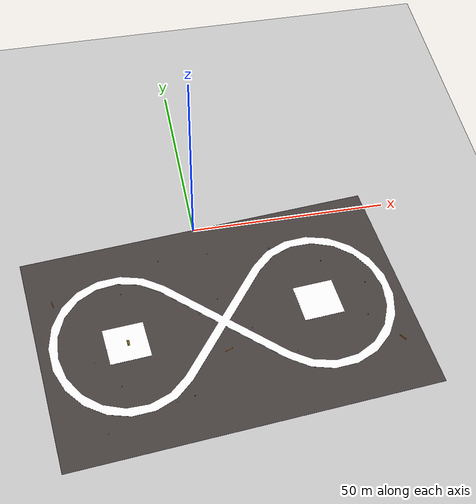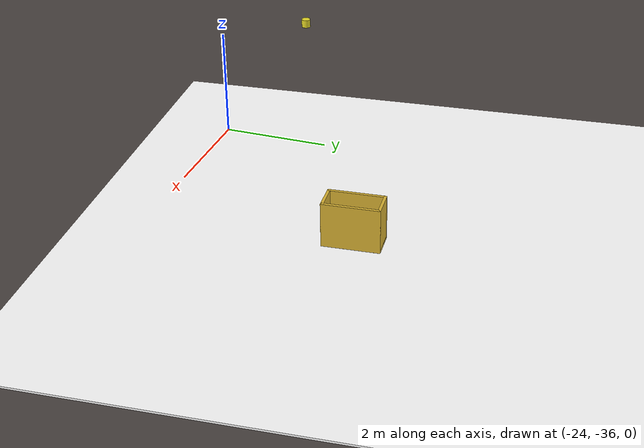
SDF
<?xml version="1.0" ?>
<sdf version="1.4">
	<world name="default">

		<!-- A global light source -->
		<include>
			<uri>model://sun</uri>
		</include>

		<!-- A ground plane -->
		<include>
			<uri>model://ground_plane</uri>
		</include>

		<!--Model Blender of Stage-->

		<model name="testbed_scene">
			<static>true</static>
            <pose>0 0 0 0 0 -3.0489</pose>
			<link name="test_scene">
				<visual name="visual">
					<geometry>
						<mesh><uri>model://stage.dae</uri></mesh>
					</geometry>
				</visual>
			</link>
		</model>

        <!-- Model of Static Objects -->
        <model name="static_object_1">
            <pose>-20.8365  -17.4365 0.05 0 0 0</pose>
            <include>
                <uri>model://green_object</uri>
            </include>
        </model>

        <model name="static_object_2">
            <pose>37.4698  -34.0252 0.05 0 0 0</pose>
            <include>
                <uri>model://green_object</uri>
            </include>
        </model>

        <model name="static_object_3">
            <pose>17.8852   -9.4298 0.05 0 0 0</pose>
            <include>
                <uri>model://green_object</uri>
            </include>
        </model>

        <model name="static_object_4">
            <pose> 9.0487  -32.9539 0.05 0 0 0</pose>
            <include>
                <uri>model://green_object</uri>
            </include>
        </model>

        <model name="static_object_5">
            <pose>2.2773  -22.9877 0.05 0 0 0</pose>
            <include>
                <uri>model://blue_object</uri>
            </include>
        </model>

        <model name="static_object_6">
            <pose>29.9628  -15.7808 0.05 0 0 0</pose>
            <include>
                <uri>model://blue_object</uri>
            </include>
        </model>

        <model name="static_object_7">
            <pose>-23.7384  -43.9055 0.05 0 0 0</pose>
            <include>
                <uri>model://blue_object</uri>
            </include>
        </model>

        <model name="static_object_8">
            <pose>39.2744  -24.2577 0.05 0 0 0</pose>
            <include>
                <uri>model://red_object</uri>
            </include>
        </model>

        <model name="static_object_9">
            <pose>-10.4183   -8.7182 0.05 0 0 0</pose>
            <include>
                <uri>model://red_object</uri>
            </include>
        </model>

        <model name="static_object_10">
            <pose>-7.4938  -49.3329 0.05 0 0 0</pose>
            <include>
                <uri>model://red_object</uri>
            </include>
        </model>

        <!-- BIG OBJECTS -->

        <model name="big_object_1">
            <pose>2.4563  -38.1296 0.05 0 0 0.39270</pose>
            <include>
                <uri>model://orange_object</uri>
            </include>
        </model>

        <model name="big_object_2">
            <pose>-37.6818  -17.6710 0.05 0 0 1.76715</pose>
            <include>
                <uri>model://orange_object</uri>
            </include>
        </model>

        <model name="big_object_3">
            <pose>43.8999  -41.9557 0.1 0 0 2.15985</pose>
            <include>
                <uri>model://orange_object</uri>
            </include>
        </model>

         <!-- Model of Mobile Objects -->

        <model name="mobile_object_1">
            <pose>2.1286   -8.5262 0.05 0 0 0</pose>
            <include>
                <uri>model://yellow_object</uri>
            </include>
        </model>

        <model name="mobile_object_2">
            <pose>-11.7802  -50.2689 0.05 0 0 0</pose>
            <include>
                <uri>model://yellow_object</uri>
            </include>
        </model>

        <model name="mobile_object_3">
            <pose>-2.9102  -26.6810 0.05 0 0 0</pose>
            <include>
                <uri>model://yellow_object</uri>
            </include>
        </model>

        <model name="mobile_object_4">
            <pose>-28.1690  -55.6940 0.05 0 0 0</pose>
            <include>
                <uri>model://yellow_object</uri>
            </include>
        </model>

        <model name="mobile_object_5">
            <pose>-29.3104  -36.3990 0.05 0 0 0</pose>
            <include>
                <uri>model://yellow_object</uri>
            </include>
        </model>

        <model name="mobile_object_6">
            <pose>18.3501  -41.3313 0.05 0 0 0</pose>
            <include>
                <uri>model://yellow_object</uri>
            </include>
        </model>

        <!-- DROP BOX -->

        <model name="drop_box">
            <pose>-20.7858 -32.3102 0.05 0 0 -3.0489</pose>
            <include>
                <uri>model://dropping_box</uri>
            </include>
        </model>
	</world>
</sdf>

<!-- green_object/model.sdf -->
<sdf version="1.4">
<model name="green cylinder">
  <pose>0 0 0.08 0 0 0</pose>
    <link name="grab_here">
      <inertial>
        <mass>0.5</mass>
        <inertia>
          <ixx>0.083</ixx>
          <ixy>0.0</ixy>
          <ixz>0.0</ixz>
          <iyy>0.083</iyy>
          <iyz>0.0</iyz>
          <izz>0.083</izz>
        </inertia>
      </inertial>
      <collision name="collision">
        <geometry>
          <cylinder>
            <radius>0.10</radius>
            <length>0.2</length>
          </cylinder>
        </geometry>
      </collision>
      <visual name="visual">
        <geometry>
          <cylinder>
            <radius>0.10</radius>
            <length>0.2</length>
          </cylinder>
        </geometry>
        <material>
        	<script>
              <uri>file://media/materials/scripts/gazebo.material</uri>
              <name>Gazebo/Green</name>
            </script>
        </material>
      </visual>
    </link>
  </model>
</sdf>

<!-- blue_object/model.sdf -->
<sdf version="1.4">
<model name="blue cylinder">
  <pose>0 0 0.08 0 0 0</pose>
    <link name="grab_here">
      <inertial>
        <mass>0.5</mass>
        <inertia>
          <ixx>0.083</ixx>
          <ixy>0.0</ixy>
          <ixz>0.0</ixz>
          <iyy>0.083</iyy>
          <iyz>0.0</iyz>
          <izz>0.083</izz>
        </inertia>
      </inertial>
      <collision name="collision">
        <geometry>
          <cylinder>
            <radius>0.10</radius>
            <length>0.2</length>
          </cylinder>
        </geometry>
      </collision>
      <visual name="visual">
        <geometry>
          <cylinder>
            <radius>0.10</radius>
            <length>0.2</length>
          </cylinder>
        </geometry>
        <material>
        	<script>
              <uri>file://media/materials/scripts/gazebo.material</uri>
              <name>Gazebo/Blue</name>
            </script>
        </material>
      </visual>
    </link>
  </model>
</sdf>

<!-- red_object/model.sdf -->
<sdf version="1.4">
<model name="red cylinder">
  <pose>0 0 0.08 0 0 0</pose>
    <link name="grab_here">
      <inertial>
        <mass>0.5</mass>
        <inertia>
          <ixx>0.083</ixx>
          <ixy>0.0</ixy>
          <ixz>0.0</ixz>
          <iyy>0.083</iyy>
          <iyz>0.0</iyz>
          <izz>0.083</izz>
        </inertia>
      </inertial>
      <collision name="collision">
        <geometry>
          <cylinder>
            <radius>0.10</radius>
            <length>0.2</length>
          </cylinder>
        </geometry>
      </collision>
      <visual name="visual">
        <geometry>
          <cylinder>
            <radius>0.10</radius>
            <length>0.2</length>
          </cylinder>
        </geometry>
        <material>
        	<script>
              <uri>file://media/materials/scripts/gazebo.material</uri>
              <name>Gazebo/Red</name>
            </script>
        </material>
      </visual>
    </link>
  </model>
</sdf>

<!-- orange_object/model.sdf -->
<sdf version="1.4">
<model name="orange large object">
  <pose>0 0 0.04 0 0 0</pose>
    <link name="grab_here">
      <inertial>
        <mass>2</mass>
        <inertia>
          <ixx>0.083</ixx>
          <ixy>0.0</ixy>
          <ixz>0.0</ixz>
          <iyy>0.083</iyy>
          <iyz>0.0</iyz>
          <izz>0.083</izz>
        </inertia>
      </inertial>
      <collision name="collision">
        <geometry>
          <box>
            <size>2 0.2 0.2</size>
          </box>
        </geometry>
      </collision>
      <visual name="visual">
        <geometry>
          <box>
            <size>2 0.15 0.15</size>
          </box>
        </geometry>
        <material>
        	<script>
              <uri>file://media/materials/scripts/gazebo.material</uri>
              <name>Gazebo/Orange</name>
            </script>
        </material>
      </visual>
    </link>
  </model>
</sdf>

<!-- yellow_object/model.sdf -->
<sdf version="1.4">
<model name="yellow cylinder">
  <pose>0 0 0.08 0 0 0</pose>
    <link name="grab_here">
      <inertial>
        <mass>0.5</mass>
        <inertia>
          <ixx>0.083</ixx>
          <ixy>0.0</ixy>
          <ixz>0.0</ixz>
          <iyy>0.083</iyy>
          <iyz>0.0</iyz>
          <izz>0.083</izz>
        </inertia>
      </inertial>
      <collision name="collision">
        <geometry>
          <cylinder>
            <radius>0.10</radius>
            <length>0.2</length>
          </cylinder>
        </geometry>
      </collision>
      <visual name="visual">
        <geometry>
          <cylinder>
            <radius>0.10</radius>
            <length>0.2</length>
          </cylinder>
        </geometry>
        <material>
        	<script>
              <uri>file://media/materials/scripts/gazebo.material</uri>
              <name>Gazebo/Yellow</name>
            </script>
        </material>
      </visual>
    </link>
  </model>
</sdf>

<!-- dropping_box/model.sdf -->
<sdf version="1.4">
<model name="dropping box">
  <pose>0 0 0.08 0 0 0</pose>
  <static>true</static>
    <link name="base_face">
        <inertial>
         <mass>0.5</mass>
         <inertia>
            <ixx>0.083</ixx>
            <ixy>0.0</ixy>
            <ixz>0.0</ixz>
            <iyy>0.083</iyy>
            <iyz>0.0</iyz>
            <izz>0.083</izz>
         </inertia>
        </inertial>
        <collision name="collision">
            <geometry>
                <box>
                    <size>0.5 1 0.05</size>
                </box>
            </geometry>
        </collision>
        <visual name="visual">
            <geometry>
                <box>
                    <size>0.5 1 0.05</size>
                </box>
            </geometry>
            <material>
                <script>
                    <uri>file://media/materials/scripts/gazebo.material</uri>
                    <name>Gazebo/Gold</name>
                </script>
            </material>
        </visual>
    </link>

    <link name="front_face">
      <pose>0.225 0 0.375 0 0 0</pose>
      <inertial>
        <mass>0.5</mass>
        <inertia>
          <ixx>0.083</ixx>
          <ixy>0.0</ixy>
          <ixz>0.0</ixz>
          <iyy>0.083</iyy>
          <iyz>0.0</iyz>
          <izz>0.083</izz>
        </inertia>
      </inertial>
      <collision name="collision">
        <geometry>
        <box>
          <size>0.05 1 0.8</size>
        </box>
        </geometry>
      </collision>
      <visual name="visual">
        <geometry>
        <box>
          <size>0.05 1 0.8</size>
        </box>
        </geometry>
        <material>
            <script>
              <uri>file://media/materials/scripts/gazebo.material</uri>
              <name>Gazebo/Gold</name>
            </script>
        </material>
      </visual>
    </link>

    <link name="rear_face">
      <pose>-0.225 0 0.375 0 0 0</pose>
      <inertial>
        <mass>0.5</mass>
        <inertia>
          <ixx>0.083</ixx>
          <ixy>0.0</ixy>
          <ixz>0.0</ixz>
          <iyy>0.083</iyy>
          <iyz>0.0</iyz>
          <izz>0.083</izz>
        </inertia>
      </inertial>
      <collision name="collision">
        <geometry>
        <box>
          <size>0.05 1 0.8</size>
        </box>
        </geometry>
      </collision>
      <visual name="visual">
        <geometry>
        <box>
          <size>0.05 1 0.8</size>
        </box>
        </geometry>
        <material>
            <script>
              <uri>file://media/materials/scripts/gazebo.material</uri>
              <name>Gazebo/Gold</name>
            </script>
        </material>
      </visual>
    </link>

    <link name="right_face">
      <pose>0 0.475 0.375 0 0 0</pose>
      <inertial>
        <mass>0.5</mass>
        <inertia>
          <ixx>0.083</ixx>
          <ixy>0.0</ixy>
          <ixz>0.0</ixz>
          <iyy>0.083</iyy>
          <iyz>0.0</iyz>
          <izz>0.083</izz>
        </inertia>
      </inertial>
      <collision name="collision">
        <geometry>
        <box>
          <size>0.5 0.05 0.8</size>
        </box>
        </geometry>
      </collision>
      <visual name="visual">
        <geometry>
        <box>
          <size>0.5 0.05 0.8</size>
        </box>
        </geometry>
        <material>
            <script>
              <uri>file://media/materials/scripts/gazebo.material</uri>
              <name>Gazebo/Gold</name>
            </script>
        </material>
      </visual>
    </link>

    <link name="left_face">
      <pose>0 -0.475 0.375 0 0 0</pose>
      <inertial>
        <mass>0.5</mass>
        <inertia>
          <ixx>0.083</ixx>
          <ixy>0.0</ixy>
          <ixz>0.0</ixz>
          <iyy>0.083</iyy>
          <iyz>0.0</iyz>
          <izz>0.083</izz>
        </inertia>
      </inertial>
      <collision name="collision">
        <geometry>
        <box>
          <size>0.5 0.05 0.8</size>
        </box>
        </geometry>
      </collision>
      <visual name="visual">
        <geometry>
        <box>
          <size>0.5 0.05 0.8</size>
        </box>
        </geometry>
        <material>
            <script>
              <uri>file://media/materials/scripts/gazebo.material</uri>
              <name>Gazebo/Gold</name>
            </script>
        </material>
      </visual>
    </link>

    <joint name="base_front" type="revolute">
        <child>front_face</child>
        <parent>base_face</parent>
        <pose>1 1 1 0 0 0</pose>
        <axis>
          <xyz>1 1 1</xyz>
        </axis>
    </joint>

    <joint name="base_rear" type="revolute">
        <child>rear_face</child>
        <parent>base_face</parent>
        <pose>1 1 1 0 0 0</pose>
        <axis>
          <xyz>1 1 1</xyz>
        </axis>
    </joint>

    <joint name="base_right" type="revolute">
        <child>right_face</child>
        <parent>base_face</parent>
        <pose>1 1 1 0 0 0</pose>
        <axis>
          <xyz>1 1 1</xyz>
        </axis>
    </joint>

    <joint name="base_left" type="revolute">
        <child>left_face</child>
        <parent>base_face</parent>
        <pose>1 1 1 0 0 0</pose>
        <axis>
          <xyz>1 1 1</xyz>
        </axis>
    </joint>

  </model>
</sdf>
